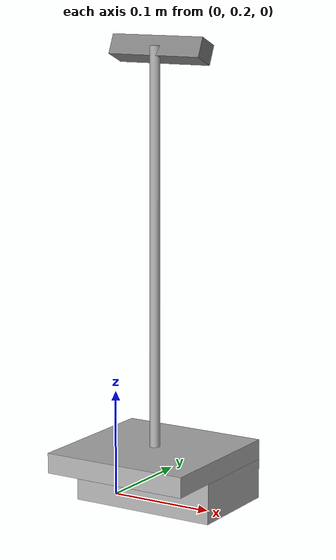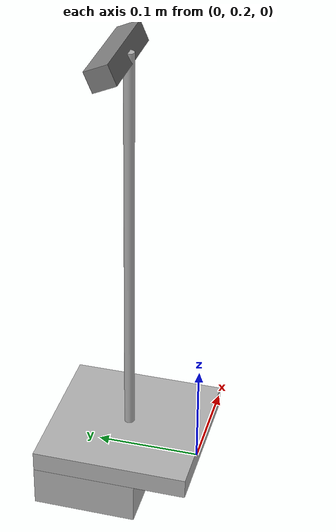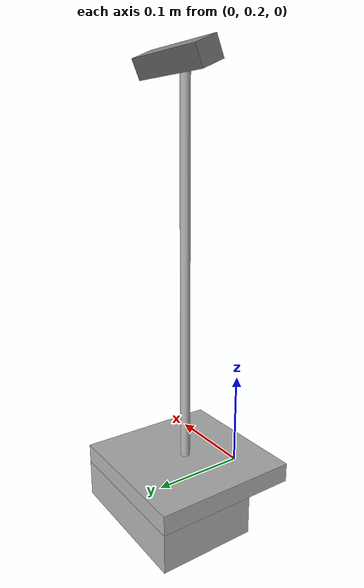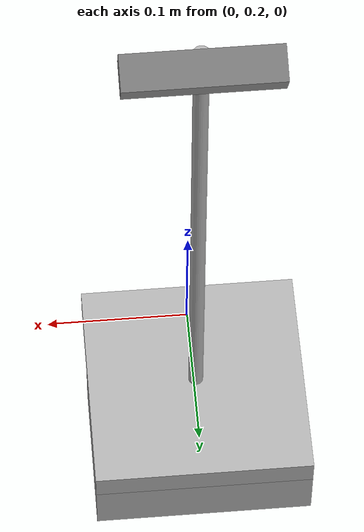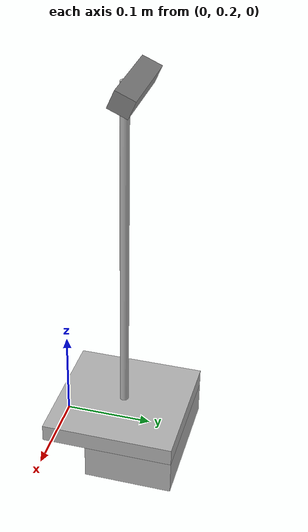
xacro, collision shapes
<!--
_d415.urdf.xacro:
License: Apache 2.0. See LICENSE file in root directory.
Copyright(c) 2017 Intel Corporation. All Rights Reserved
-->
<?xml version="1.0"?>
<robot xmlns:xacro="http://ros.org/wiki/xacro" name="camera_right">

	<xacro:include filename="$(find gazebo_sensors_tutorial)/robot/sensors/_d415.urdf.xacro"/>
	<xacro:include filename="$(find gazebo_sensors_tutorial)/robot/sensors/cam_holder.urdf.xacro"/>

	<link name="chess_frame" />

        <!-- sets camera frame w.r.t. to chess frame-->
        <!-- set only the color camera and a slow frame rate: an image each 5 seconds)-->
	<xacro:sensor_d415 name="camera_right" parent="chess_frame" flag_color="1" flag_ir="0" flag_depth="0" updaterate="0.2">
		<origin xyz="0.0 0.29 0.410304" rpy="0 1.161379 -1.570791" /> <!-- result from calib -->
	</xacro:sensor_d415>

        <!-- sets cam holder w.r.t to camera-->
	<xacro:cam_holder name="camera_right_holder" parent="camera_right_link">
		<origin xyz="0.0 -0.020 0.0115" rpy="0 -1.161379 0" />
	</xacro:cam_holder>
</robot>

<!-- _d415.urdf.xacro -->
<robot name="sensor_d415" xmlns:xacro="http://ros.org/wiki/xacro">
<xacro:macro name="sensor_d415" params="name parent flag_color flag_ir flag_depth updaterate *origin">

	<!-- The following values are approximate, and the camera node
	publishing TF values with actual calibrated camera extrinsic values -->
	<xacro:property name="d415_cam_depth_to_left_ir_offset" value="0.0"/>
	<xacro:property name="d415_cam_depth_to_right_ir_offset" value="-0.055"/>
	<xacro:property name="d415_cam_depth_to_color_offset" value="0.015"/>

	<!-- The following values model the aluminum peripherial case for the
	d415 camera, with the camera joint represented by the actual
	peripherial camera tripod mount -->
	<xacro:property name="d415_cam_width" value="0.099"/>
	<xacro:property name="d415_cam_height" value="0.023"/>
	<xacro:property name="d415_cam_depth" value="0.02005"/>
	<xacro:property name="d415_cam_mount_from_center_offset" value="0.00987"/>

	<!-- The following offset is relative the the physical d415 camera peripherial
	camera tripod mount -->
	<xacro:property name="d415_cam_depth_px" value="${d415_cam_mount_from_center_offset}"/>
	<xacro:property name="d415_cam_depth_py" value="0.020"/>
	<xacro:property name="d415_cam_depth_pz" value="${d415_cam_height/2}"/>

	<material name="aluminum">
		<color rgba="0.5 0.5 0.5 1"/>
	</material>

	<!-- camera body, with origin at bottom screw mount -->
	<joint name="${name}_joint" type="fixed">
		<xacro:insert_block name="origin" />
		<parent link="${parent}"/>
		<child link="${name}_bottom_screw_frame" />
	</joint>

	<link name="${name}_bottom_screw_frame"/>

	<joint name="${name}_link_joint" type="fixed">
		<origin xyz="0 ${d415_cam_depth_py} ${d415_cam_depth_pz}" rpy="0 0 0"/>
		<parent link="${name}_bottom_screw_frame"/>
		<child link="${name}_link" />
	</joint>

	<link name="${name}_link">
	<visual>
		<origin xyz="${d415_cam_mount_from_center_offset} ${-d415_cam_depth_py} 0" rpy="${pi/2} 0 ${pi/2}"/>
		<geometry>
			<mesh filename="package://gazebo_sensors_tutorial/robot/sensors/visual/d415.stl" />
		</geometry>
		<material name="aluminum"/>
	</visual>
	<collision>
		<origin xyz="0 ${-d415_cam_depth_py} 0" rpy="0 0 0"/>
		<geometry>
			<box size="${d415_cam_depth} ${d415_cam_width} ${d415_cam_height}"/>
		</geometry>
	</collision>
	<inertial>
		<!-- The following are not reliable values, and should not be used for modeling -->
		<mass value="0.564" />
		<origin xyz="0 0 0" />
		<inertia ixx="0.003881243" ixy="0.0" ixz="0.0" iyy="0.000498940" iyz="0.0" izz="0.003879257" />
	</inertial>
	</link>

	<!-- camera depth joints and links -->
	<joint name="${name}_depth_joint" type="fixed">
		<origin xyz="0 0 0" rpy="0 0 0"/>
		<parent link="${name}_link"/>
		<child link="${name}_depth_frame" />
	</joint>
	<link name="${name}_depth_frame"/>

	<joint name="${name}_depth_optical_joint" type="fixed">
		<origin xyz="0 0 0" rpy="${-pi/2} 0 ${-pi/2}" />
		<parent link="${name}_depth_frame" />
		<child link="${name}_depth_optical_frame" />
	</joint>
	<link name="${name}_depth_optical_frame"/>

	<!-- camera left IR joints and links -->
	<joint name="${name}_left_ir_joint" type="fixed">
		<origin xyz="0 ${d415_cam_depth_to_left_ir_offset} 0" rpy="0 0 0" />
		<parent link="${name}_depth_frame" />
		<child link="${name}_left_ir_frame" />
	</joint>
	<link name="${name}_left_ir_frame"/>

	<joint name="${name}_left_ir_optical_joint" type="fixed">
		<origin xyz="0 0 0" rpy="${-pi/2} 0 ${-pi/2}" />
		<parent link="${name}_left_ir_frame" />
		<child link="${name}_left_ir_optical_frame" />
	</joint>
	<link name="${name}_left_ir_optical_frame"/>

	<!-- camera right IR joints and links -->
	<joint name="${name}_right_ir_joint" type="fixed">
		<origin xyz="0 ${d415_cam_depth_to_right_ir_offset} 0" rpy="0 0 0" />
		<parent link="${name}_depth_frame" />
		<child link="${name}_right_ir_frame" />
	</joint>
	<link name="${name}_right_ir_frame"/>

	<joint name="${name}_right_ir_optical_joint" type="fixed">
		<origin xyz="0 0 0" rpy="${-pi/2} 0 ${-pi/2}" />
		<parent link="${name}_right_ir_frame" />
		<child link="${name}_right_ir_optical_frame" />
	</joint>
	<link name="${name}_right_ir_optical_frame"/>

	<!-- camera color joints and links -->
	<joint name="${name}_color_joint" type="fixed">
		<origin xyz="0 ${d415_cam_depth_to_color_offset} 0" rpy="0 0 0" />
		<parent link="${name}_depth_frame" />
		<child link="${name}_color_frame" />
	</joint>
	<link name="${name}_color_frame"/>

	<joint name="${name}_color_optical_joint" type="fixed">
		<origin xyz="0 0 0" rpy="${-pi/2} 0 ${-pi/2}" />
		<parent link="${name}_color_frame" />
		<child link="${name}_color_optical_frame" />
	</joint>
	<link name="${name}_color_optical_frame"/>

	<gazebo reference="${name}_link">

	<xacro:if value="${flag_color}" >
		<sensor name="${name}_rgb_sensor" type="camera">
			<pose frame="${name}_color_optical_frame">0 0 0 0 0 0</pose>
			<camera name="${name}_color">
				<horizontal_fov>1.211258501</horizontal_fov><!--69.4 deg = 1.211258501 rad -->
				<aspect_ratio>1.777777778</aspect_ratio>
				<image>
					<width>1920</width>
					<height>1080</height>
					<format>RGB_INT8</format>
				</image>
				<clip>
					<near>0.1</near>
					<far>100</far>
				</clip>
				<noise>
					<type>gaussian</type>
					<mean>0.0</mean>
					<stddev>0.007</stddev>
				</noise>
			</camera>
			<always_on>1</always_on>
			<update_rate>${updaterate}</update_rate>
			<visualize>1</visualize>
			<plugin name="${name}_color_controller" filename="libgazebo_ros_camera.so">
				<alwaysOn>true</alwaysOn>
				<updateRate>0.0</updateRate>
				<cameraName>${name}/color/</cameraName>
				<imageTopicName>image_raw</imageTopicName>
				<cameraInfoTopicName>camera_info</cameraInfoTopicName>
				<frameName>${name}_color_optical_frame</frameName>
                                <hackBaseline>0.0</hackBaseline>
				<distortionK1>0.0</distortionK1>
				<distortionK2>0.0</distortionK2>
				<distortionK3>0.0</distortionK3>
				<distortionT1>0.0</distortionT1>
				<distortionT2>0.0</distortionT2>
			</plugin>
		</sensor>
	</xacro:if>

	<xacro:if value="${flag_ir}" >
		<sensor name="${name}_left_ired_sensor" type="camera">
			<pose frame="${name}_left_ir_optical_frame">0 0 0 0 0 0</pose>
			<camera name="${name}">
				<horizontal_fov>1.211258501</horizontal_fov><!--69.4 deg = 1.211258501 rad -->
				<aspect_ratio>1.777777778</aspect_ratio>
				<image>
					<width>1920</width>
					<height>1080</height>
					<format>L_INT8</format>
				</image>
				<clip>
					<near>0.1</near>
					<far>100</far>
				</clip>
				<noise>
					<type>gaussian</type>
					<mean>0.0</mean>
					<stddev>0.05</stddev>
				</noise>
			</camera>
			<always_on>1</always_on>
			<update_rate>${updaterate}</update_rate>
			<visualize>0</visualize>
			<plugin name="{name}_left_ir_controller" filename="libgazebo_ros_camera.so">
				<alwaysOn>true</alwaysOn>
				<updateRate>0.0</updateRate>
				<cameraName>${name}/left_ir/</cameraName>
				<imageTopicName>image_raw</imageTopicName>
				<cameraInfoTopicName>camera_info</cameraInfoTopicName>
				<frameName>${name}_left_ir_optical_frame</frameName>
                                <hackBaseline>0.0</hackBaseline>
				<distortionK1>0.0</distortionK1>
				<distortionK2>0.0</distortionK2>
				<distortionK3>0.0</distortionK3>
				<distortionT1>0.0</distortionT1>
				<distortionT2>0.0</distortionT2>
			</plugin>
		</sensor>

		<sensor name="${name}_right_ired_sensor" type="camera">
			<pose frame="${name}_right_ir_optical_frame">0 0 0 0 0 0</pose>
			<camera name="${name}">
				<horizontal_fov>1.211258501</horizontal_fov><!--69.4 deg = 1.211258501 rad -->
				<aspect_ratio>1.777777778</aspect_ratio>
				<image>
					<width>1920</width>
					<height>1080</height>
					<format>L_INT8</format>
				</image>
				<clip>
					<near>0.1</near>
					<far>100</far>
				</clip>
				<noise>
					<type>gaussian</type>
					<mean>0.0</mean>
					<stddev>0.05</stddev>
				</noise>
			</camera>
			<always_on>1</always_on>
			<update_rate>${updaterate}</update_rate>
			<visualize>0</visualize>
			<plugin name="{name}_right_ir_controller" filename="libgazebo_ros_camera.so">
				<alwaysOn>true</alwaysOn>
				<updateRate>0.0</updateRate>
				<cameraName>${name}/right_ir/</cameraName>
				<imageTopicName>image_raw</imageTopicName>
				<cameraInfoTopicName>camera_info</cameraInfoTopicName>
				<frameName>${name}_right_ir_optical_frame</frameName>
                                <hackBaseline>0.0</hackBaseline>
				<distortionK1>0.0</distortionK1>
				<distortionK2>0.0</distortionK2>
				<distortionK3>0.0</distortionK3>
				<distortionT1>0.0</distortionT1>
				<distortionT2>0.0</distortionT2>
			</plugin>
		</sensor>
	</xacro:if>

	<xacro:if value="${flag_depth}" >
		<sensor name="${name}_depth_sensor" type="depth">
			<pose frame="${name}_depth_optical_frame">0 -0.03 0.004 0 0 0</pose>
			<camera name="${name}">
				<horizontal_fov>1.211258501</horizontal_fov><!--69.4 deg = 1.211258501 rad -->
				<aspect_ratio>1.777777778</aspect_ratio>
				<image>
					<width>1920</width>
					<height>1080</height>
				</image>
				<clip>
					<near>0.1</near>
					<far>100</far>
				</clip>
				<noise>
					<type>gaussian</type>
					<mean>0.0</mean>
					<stddev>0.100</stddev>
				</noise>
			</camera>
			<always_on>1</always_on>
			<update_rate>${updaterate}</update_rate>
			<visualize>0</visualize>
			<plugin name="{name}_depth_controller" filename="libgazebo_ros_camera.so">
				<alwaysOn>true</alwaysOn>
				<updateRate>0.0</updateRate>
				<cameraName>${name}/depth/</cameraName>
				<imageTopicName>image_raw</imageTopicName>
				<cameraInfoTopicName>camera_info</cameraInfoTopicName>
				<frameName>${name}_depth_optical_frame</frameName>
				<hackBaseline>0.0</hackBaseline>
				<distortionK1>0.0</distortionK1>
				<distortionK2>0.0</distortionK2>
				<distortionK3>0.0</distortionK3>
				<distortionT1>0.0</distortionT1>
				<distortionT2>0.0</distortionT2>
			</plugin>
		</sensor>
	</xacro:if>

	</gazebo>

</xacro:macro>
</robot>

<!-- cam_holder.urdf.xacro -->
<robot name="cam_holder" xmlns:xacro="http://ros.org/wiki/xacro">

<xacro:macro name="cam_holder" params="name parent *origin">

	<joint name="${name}_anchor" type="fixed">
		<xacro:insert_block name="origin" />
		<parent link="${parent}"/>
		<child link="${name}_base" />
	</joint>

	<link name="${name}_base">
		<inertial>
			<origin xyz="0 0 0" />
			<mass value="3" />
			<inertia ixx="1.0" ixy="0.0" ixz="0.0" iyy="1.0" iyz="0.0" izz="1.0" />
		</inertial>
		<visual name="holder">
			<origin xyz="0.0 0.0 -0.2" rpy="0 0 0" />
			<material name="LightGrey">
				<color rgba="0.7 0.7 0.7 1.0"/>
			</material>
			<geometry>
				<cylinder radius="0.004" length="0.4"/>
			</geometry>
		</visual>
		<visual name="base_top">
			<origin xyz="0 0 -0.40" rpy="0 0 0" />
			<material name="LightGrey">
				<color rgba="0.7 0.7 0.7 1.0"/>
			</material>
			<geometry>
				<box size="0.15 0.15 0.02" />
			</geometry>
		</visual>
		<visual name="base_bottom">
			<origin xyz="-0.025 0 -0.43" rpy="0 0 0" />
			<material name="LightGrey">
				<color rgba="0.7 0.7 0.7 1.0"/>
			</material>
			<geometry>
				<box size="0.10 0.15 0.04" />
			</geometry>
		</visual>
		<collision name="holder">
			<origin xyz="0.0 0.0 -0.2" rpy="0 0 0" />
			<geometry>
				<cylinder radius="0.005" length="0.4"/>
			</geometry>
		</collision>
		<collision name="base_top">
			<origin xyz="0 0 -0.40" rpy="0 0 0" />
			<geometry>
				<box size="0.15 0.15 0.02" />
			</geometry>
		</collision>
		<collision name="base_bottom">
			<origin xyz="-0.025 0 -0.43" rpy="0 0 0" />
			<geometry>
				<box size="0.10 0.15 0.04" />
			</geometry>
		</collision>
	</link>

</xacro:macro>
</robot>
